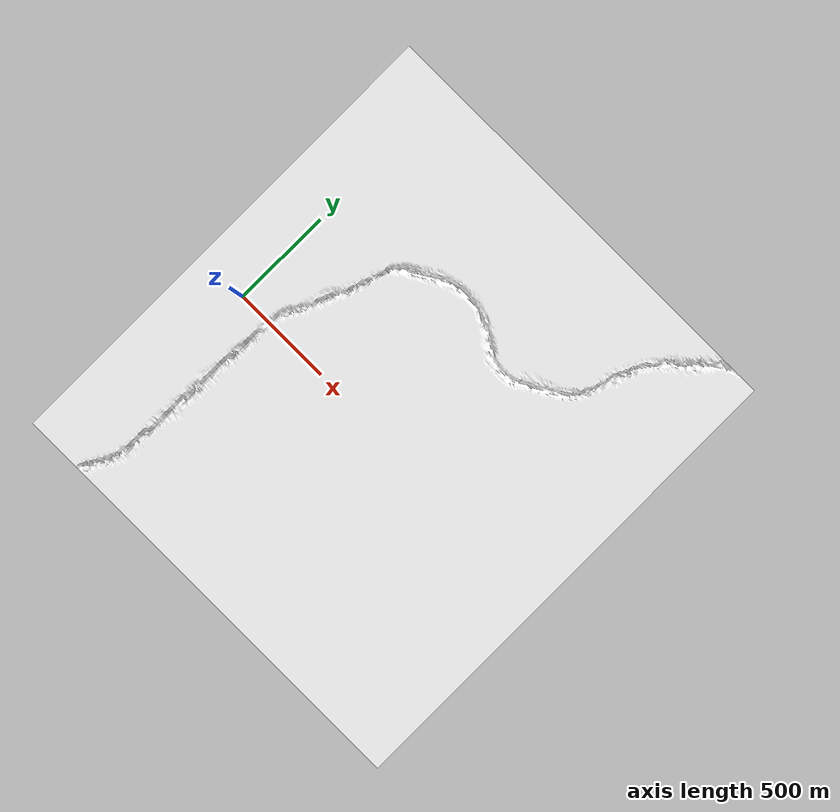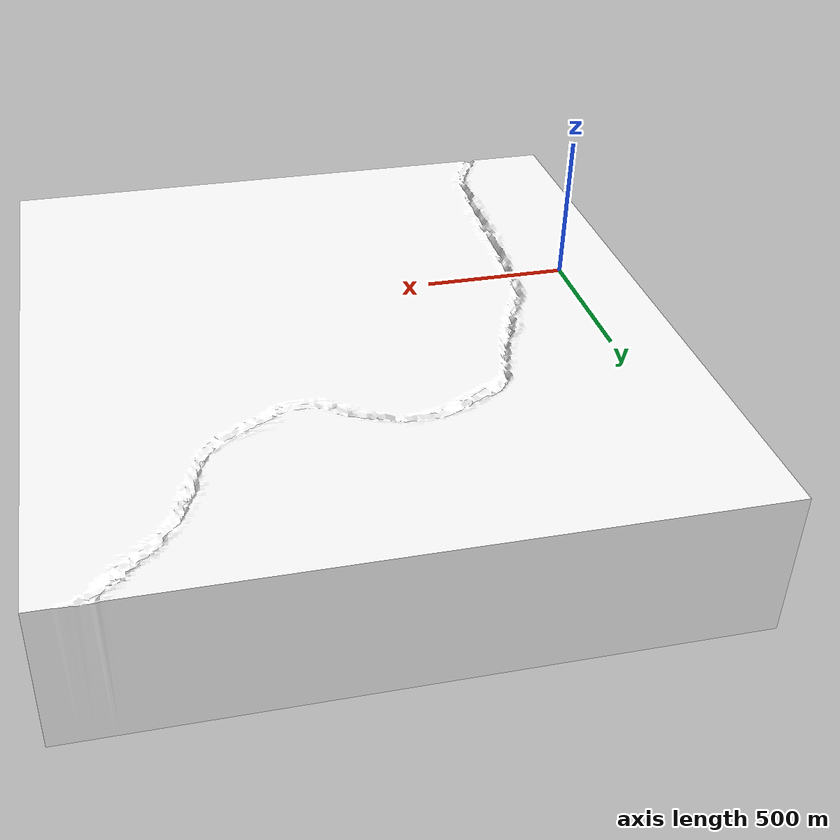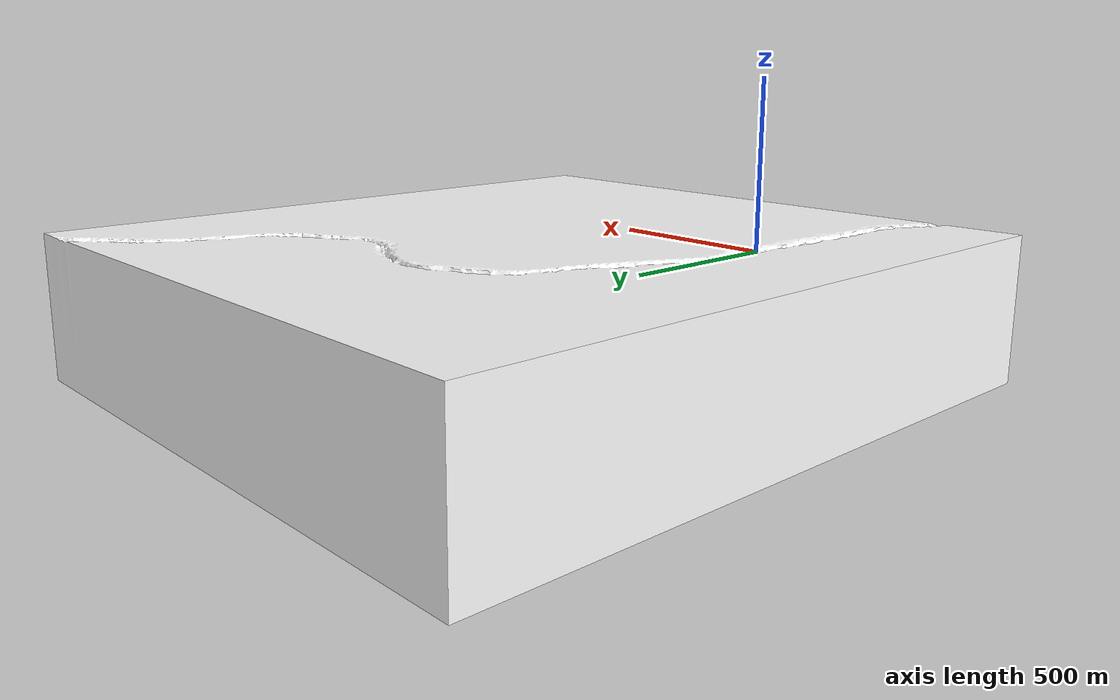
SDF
<?xml version="1.0" ?>
<sdf version="1.5">

  <model name="wabash">
    <pose>0 0 -42 0 0 0</pose>
    <static>true</static>
    <link name="body">
      <visual name="visual">
        <geometry>
          <mesh><uri>model://wabash/media/wabash.dae</uri></mesh>
        </geometry>
        <material>
          <diffuse>1.0 1.0 1.0</diffuse>
          <specular>1.0 1.0 1.0</specular>
          <pbr>
            <metal>
              <albedo_map>media/Textures/Grass.png</albedo_map>
              <metalness>0</metalness>
            </metal>
          </pbr>
        </material>
      </visual>
      <collision name="collision">
        <geometry>
          <mesh><uri>model://wabash/media/wabash.dae</uri></mesh>
        </geometry>
      </collision>
    </link>
  </model>
</sdf>
